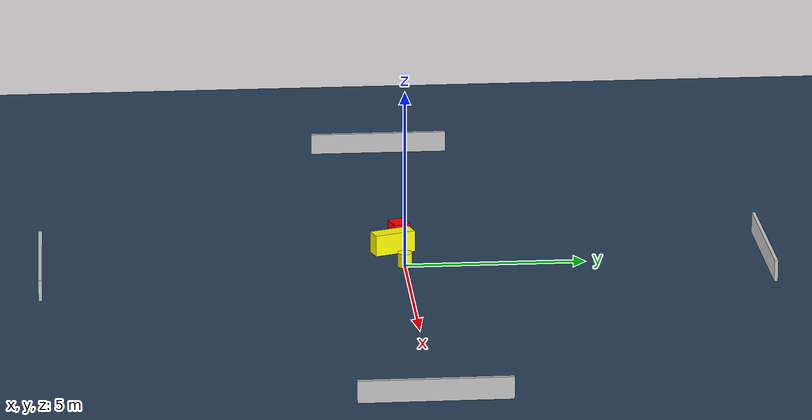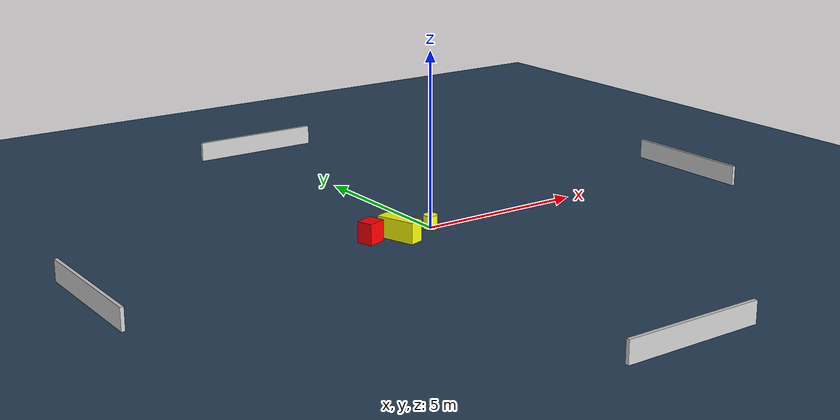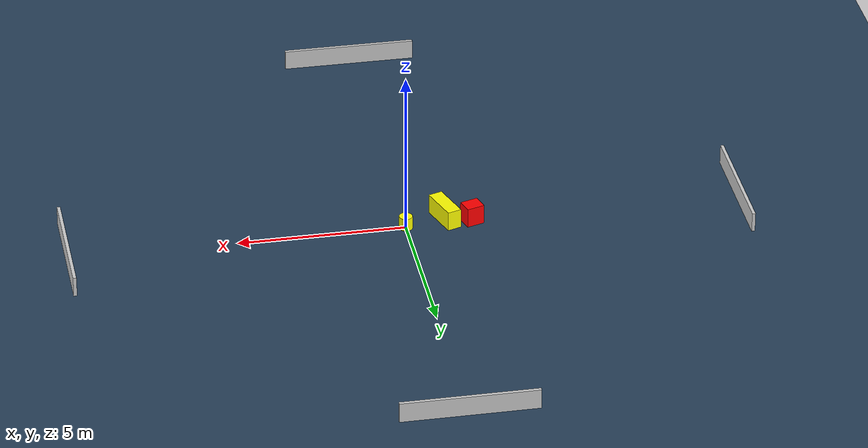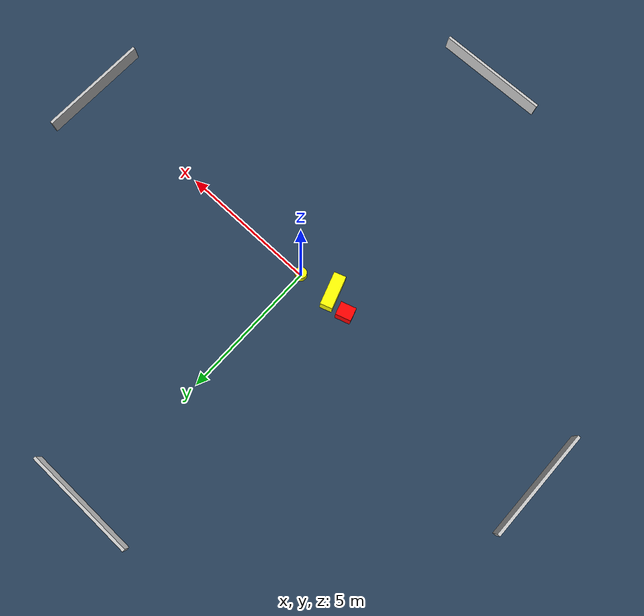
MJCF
<?xml version="1.0" ?>
<mujoco model="generated_environment">
  <option timestep="0.01" integrator="RK4" cone="elliptic"/>
  <default>
    <geom density="1"/>
  </default>
  <asset>
    <texture builtin="gradient" height="3072" name="skybox" rgb1="0.3 0.5 0.7" rgb2="0 0 0" type="skybox" width="512"/>
    <texture builtin="checker" height="300" name="groundplane" rgb1="0.2 0.3 0.4" rgb2="0.1 0.2 0.3" type="2d" width="300"/>
    <material name="groundplane" reflectance="0.2" texrepeat="5 5" texture="groundplane"/>
  </asset>
  <worldbody>
    <light dir="0 0 -1" directional="true" pos="0 0 1.5"/>
    <geom condim="3" friction="0.5 0.005 0.001" material="groundplane" name="floor" pos="0 0 0" size="0 0 0.05" type="plane"/>
    <body name="walls">
      <geom name="wall_1" condim="4" pos="-10.0 0.0 0.3" rgba="0.800000011920929 0.800000011920929 0.800000011920929 1.0" size="0.05 2.0 0.3" type="box"/>
      <geom name="wall_2" condim="4" pos="10.0 0.0 0.3" rgba="0.800000011920929 0.800000011920929 0.800000011920929 1.0" size="0.05 2.0 0.3" type="box"/>
      <geom name="wall_3" condim="4" pos="0.0 -10.0 0.3" rgba="0.800000011920929 0.800000011920929 0.800000011920929 1.0" size="2.0 0.05 0.3" type="box"/>
      <geom name="wall_4" condim="4" pos="0.0 10.0 0.3" rgba="0.800000011920929 0.800000011920929 0.800000011920929 1.0" size="2.0 0.05 0.3" type="box"/>
    </body>
    <body name="robot">
      <joint name="joint_x" type="slide" pos="0 0 0" axis="1 0 0"/>
      <joint name="joint_y" type="slide" pos="0 0 0" axis="0 1 0"/>
      <geom name="robot" type="cylinder" pos="0.0 0.0 0.2" size="0.2 0.2 0.0" mass="5.0" friction="1.0 0.005 0.0001" condim="4" rgba="1.0 1.0 0.0 1.0"/>
    </body>
    <body name="obstacle_1_movable">
      <geom name="obstacle_1_movable" condim="4" pos="-1.21176025456385 -0.24470166351291875 0.3" euler="0 0 108.6644000391421" friction="0.0 0.005 0.001" rgba="1.0 1.0 0.0 1.0" size="0.5867705491178394 0.2139140830209313 0.3" type="box" mass="0.1"/>
      <joint type="free"/>
    </body>
    <body name="obstacle_2_static">
      <geom name="obstacle_2_static" condim="4" pos="-1.988101470154406 -0.006305749732140514 0.3" euler="0 0 197.49812727259987" friction="0.0 0.005 0.001" rgba="1.0 0.0 0.0 1.0" size="0.2729140858460912 0.23294804589979234 0.3" type="box"/>
    </body>
  </worldbody>
  <actuator>
    <motor name="actuator_x" joint="joint_x" gear="1" ctrlrange="-1 1"/>
    <motor name="actuator_y" joint="joint_y" gear="1" ctrlrange="-1 1"/>
  </actuator>
</mujoco>
